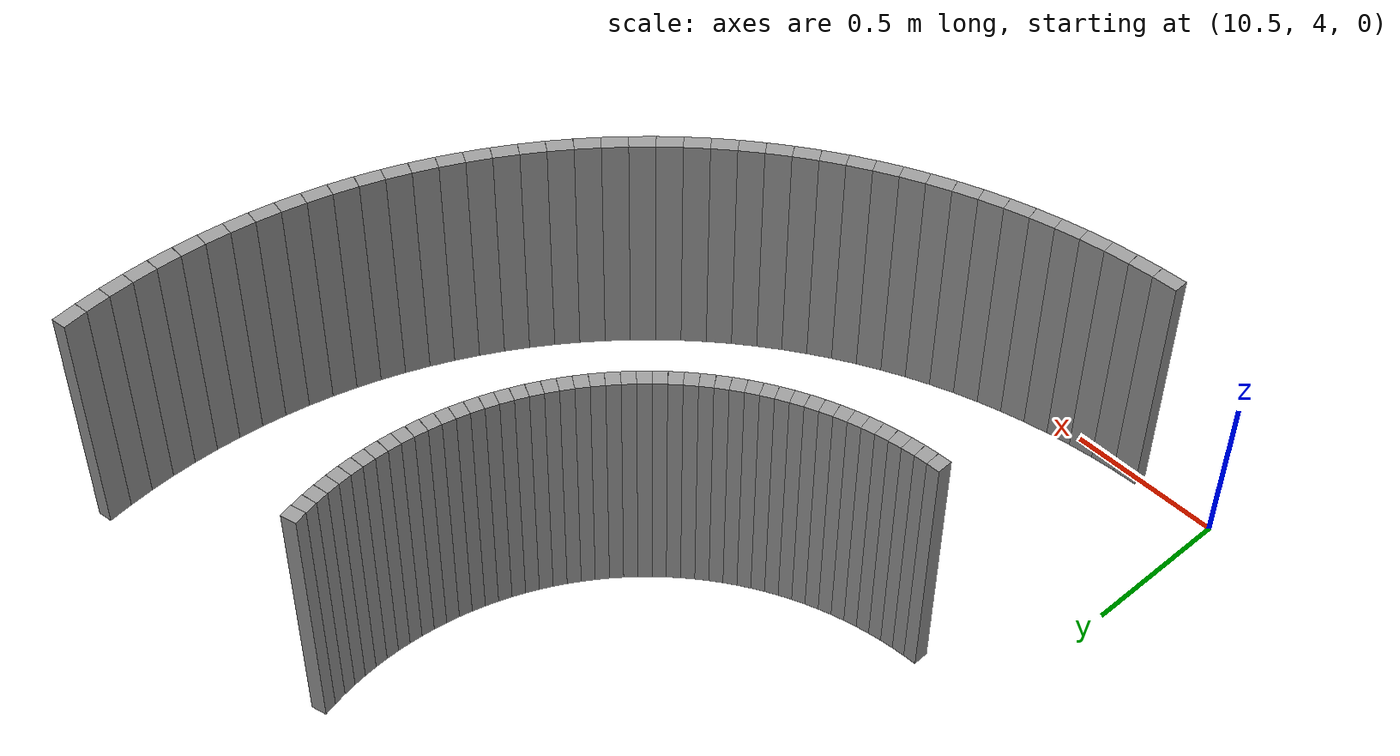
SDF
<sdf version="1.6">
 <model name="path_walls">
  <static>true</static>
  <model name="wall_left_59">
   <static>true</static>
   <pose>10.767954033458505 5.0013733407417655 0.40 0 0 0.03976699561502105</pose>
   <link name="wall_link">
    <visual name="wall_visual">
     <geometry><box><size>0.04273741812056066 0.05 0.8</size></box></geometry>
     <material><ambient>0.3 0.3 0.3 1</ambient><diffuse>0.6 0.6 0.6 1</diffuse></material>
    </visual>
    <collision name="wall_collision">
     <geometry><box><size>0.04273741812056066 0.05 0.8</size></box></geometry>
    </collision>
   </link>
  </model>
  <model name="wall_left_60">
   <static>true</static>
   <pose>10.81060700748904 5.0039206336489315 0.40 0 0 0.07953399123015173</pose>
   <link name="wall_link">
    <visual name="wall_visual">
     <geometry><box><size>0.04273741812055016 0.05 0.8</size></box></geometry>
     <material><ambient>0.3 0.3 0.3 1</ambient><diffuse>0.6 0.6 0.6 1</diffuse></material>
    </visual>
    <collision name="wall_collision">
     <geometry><box><size>0.04273741812055016 0.05 0.8</size></box></geometry>
    </collision>
   </link>
  </model>
  <model name="wall_left_61">
   <static>true</static>
   <pose>10.853124988471123 5.008161646265236 0.40 0 0 0.11930098684517748</pose>
   <link name="wall_link">
    <visual name="wall_visual">
     <geometry><box><size>0.04273741812055886 0.05 0.8</size></box></geometry>
     <material><ambient>0.3 0.3 0.3 1</ambient><diffuse>0.6 0.6 0.6 1</diffuse></material>
    </visual>
    <collision name="wall_collision">
     <geometry><box><size>0.04273741812055886 0.05 0.8</size></box></geometry>
    </collision>
   </link>
  </model>
  <model name="wall_left_62">
   <static>true</static>
   <pose>10.895440746737448 5.014089672678012 0.40 0 0 0.15906798246025736</pose>
   <link name="wall_link">
    <visual name="wall_visual">
     <geometry><box><size>0.0427374181205573 0.05 0.8</size></box></geometry>
     <material><ambient>0.3 0.3 0.3 1</ambient><diffuse>0.6 0.6 0.6 1</diffuse></material>
    </visual>
    <collision name="wall_collision">
     <geometry><box><size>0.0427374181205573 0.05 0.8</size></box></geometry>
    </collision>
   </link>
  </model>
  <model name="wall_left_63">
   <static>true</static>
   <pose>10.937487372376385 5.021695339459023 0.40 0 0 0.1988349780752911</pose>
   <link name="wall_link">
    <visual name="wall_visual">
     <geometry><box><size>0.04273741812055921 0.05 0.8</size></box></geometry>
     <material><ambient>0.3 0.3 0.3 1</ambient><diffuse>0.6 0.6 0.6 1</diffuse></material>
    </visual>
    <collision name="wall_collision">
     <geometry><box><size>0.04273741812055921 0.05 0.8</size></box></geometry>
    </collision>
   </link>
  </model>
  <model name="wall_left_64">
   <static>true</static>
   <pose>10.979198381030304 5.030966620485776 0.40 0 0 0.23860197369034425</pose>
   <link name="wall_link">
    <visual name="wall_visual">
     <geometry><box><size>0.04273741812055015 0.05 0.8</size></box></geometry>
     <material><ambient>0.3 0.3 0.3 1</ambient><diffuse>0.6 0.6 0.6 1</diffuse></material>
    </visual>
    <collision name="wall_collision">
     <geometry><box><size>0.04273741812055015 0.05 0.8</size></box></geometry>
    </collision>
   </link>
  </model>
  <model name="wall_left_65">
   <static>true</static>
   <pose>11.020507819021024 5.041888855957301 0.40 0 0 0.27836896930541855</pose>
   <link name="wall_link">
    <visual name="wall_visual">
     <geometry><box><size>0.04273741812056051 0.05 0.8</size></box></geometry>
     <material><ambient>0.3 0.3 0.3 1</ambient><diffuse>0.6 0.6 0.6 1</diffuse></material>
    </visual>
    <collision name="wall_collision">
     <geometry><box><size>0.04273741812056051 0.05 0.8</size></box></geometry>
    </collision>
   </link>
  </model>
  <model name="wall_left_66">
   <static>true</static>
   <pose>11.061350367636113 5.054444775574303 0.40 0 0 0.31813596492052176</pose>
   <link name="wall_link">
    <visual name="wall_visual">
     <geometry><box><size>0.042737418120553664 0.05 0.8</size></box></geometry>
     <material><ambient>0.3 0.3 0.3 1</ambient><diffuse>0.6 0.6 0.6 1</diffuse></material>
    </visual>
    <collision name="wall_collision">
     <geometry><box><size>0.042737418120553664 0.05 0.8</size></box></geometry>
    </collision>
   </link>
  </model>
  <model name="wall_left_67">
   <static>true</static>
   <pose>11.10166144641121 5.068614525847053 0.40 0 0 0.35790296053555865</pose>
   <link name="wall_link">
    <visual name="wall_visual">
     <geometry><box><size>0.042737418120550326 0.05 0.8</size></box></geometry>
     <material><ambient>0.3 0.3 0.3 1</ambient><diffuse>0.6 0.6 0.6 1</diffuse></material>
    </visual>
    <collision name="wall_collision">
     <geometry><box><size>0.042737418120550326 0.05 0.8</size></box></geometry>
    </collision>
   </link>
  </model>
  <model name="wall_left_68">
   <static>true</static>
   <pose>11.141377315245027 5.084375701487847 0.40 0 0 0.3976699561505768</pose>
   <link name="wall_link">
    <visual name="wall_visual">
     <geometry><box><size>0.04273741812057244 0.05 0.8</size></box></geometry>
     <material><ambient>0.3 0.3 0.3 1</ambient><diffuse>0.6 0.6 0.6 1</diffuse></material>
    </visual>
    <collision name="wall_collision">
     <geometry><box><size>0.04273741812057244 0.05 0.8</size></box></geometry>
    </collision>
   </link>
  </model>
  <model name="wall_left_69">
   <static>true</static>
   <pose>11.180435175185512 5.101703380838355 0.40 0 0 0.43743695176564795</pose>
   <link name="wall_link">
    <visual name="wall_visual">
     <geometry><box><size>0.042737418120538315 0.05 0.8</size></box></geometry>
     <material><ambient>0.3 0.3 0.3 1</ambient><diffuse>0.6 0.6 0.6 1</diffuse></material>
    </visual>
    <collision name="wall_collision">
     <geometry><box><size>0.042737418120538315 0.05 0.8</size></box></geometry>
    </collision>
   </link>
  </model>
  <model name="wall_left_70">
   <static>true</static>
   <pose>11.218773267727933 5.120570165275901 0.40 0 0 0.4772039473807626</pose>
   <link name="wall_link">
    <visual name="wall_visual">
     <geometry><box><size>0.04273741812056764 0.05 0.8</size></box></geometry>
     <material><ambient>0.3 0.3 0.3 1</ambient><diffuse>0.6 0.6 0.6 1</diffuse></material>
    </visual>
    <collision name="wall_collision">
     <geometry><box><size>0.04273741812056764 0.05 0.8</size></box></geometry>
    </collision>
   </link>
  </model>
  <model name="wall_left_71">
   <static>true</static>
   <pose>11.256330972467776 5.1409462225363125 0.40 0 0 0.5169709429957956</pose>
   <link name="wall_link">
    <visual name="wall_visual">
     <geometry><box><size>0.04273741812055135 0.05 0.8</size></box></geometry>
     <material><ambient>0.3 0.3 0.3 1</ambient><diffuse>0.6 0.6 0.6 1</diffuse></material>
    </visual>
    <collision name="wall_collision">
     <geometry><box><size>0.04273741812055135 0.05 0.8</size></box></geometry>
    </collision>
   </link>
  </model>
  <model name="wall_left_72">
   <static>true</static>
   <pose>11.293048902954023 5.16279933388485 0.40 0 0 0.5567379386108451</pose>
   <link name="wall_link">
    <visual name="wall_visual">
     <geometry><box><size>0.04273741812055879 0.05 0.8</size></box></geometry>
     <material><ambient>0.3 0.3 0.3 1</ambient><diffuse>0.6 0.6 0.6 1</diffuse></material>
    </visual>
    <collision name="wall_collision">
     <geometry><box><size>0.04273741812055879 0.05 0.8</size></box></geometry>
    </collision>
   </link>
  </model>
  <model name="wall_left_73">
   <static>true</static>
   <pose>11.328869000591379 5.186094945060669 0.40 0 0 0.5965049342258953</pose>
   <link name="wall_link">
    <visual name="wall_visual">
     <geometry><box><size>0.04273741812055266 0.05 0.8</size></box></geometry>
     <material><ambient>0.3 0.3 0.3 1</ambient><diffuse>0.6 0.6 0.6 1</diffuse></material>
    </visual>
    <collision name="wall_collision">
     <geometry><box><size>0.04273741812055266 0.05 0.8</size></box></geometry>
    </collision>
   </link>
  </model>
  <model name="wall_left_74">
   <static>true</static>
   <pose>11.363734626442824 5.210796220914195 0.40 0 0 0.6362719298409574</pose>
   <link name="wall_link">
    <visual name="wall_visual">
     <geometry><box><size>0.042737418120570594 0.05 0.8</size></box></geometry>
     <material><ambient>0.3 0.3 0.3 1</ambient><diffuse>0.6 0.6 0.6 1</diffuse></material>
    </visual>
    <collision name="wall_collision">
     <geometry><box><size>0.042737418120570594 0.05 0.8</size></box></geometry>
    </collision>
   </link>
  </model>
  <model name="wall_left_75">
   <static>true</static>
   <pose>11.397590650787407 5.2368641036510635 0.40 0 0 0.6760389254560351</pose>
   <link name="wall_link">
    <visual name="wall_visual">
     <geometry><box><size>0.04273741812053488 0.05 0.8</size></box></geometry>
     <material><ambient>0.3 0.3 0.3 1</ambient><diffuse>0.6 0.6 0.6 1</diffuse></material>
    </visual>
    <collision name="wall_collision">
     <geometry><box><size>0.04273741812053488 0.05 0.8</size></box></geometry>
    </collision>
   </link>
  </model>
  <model name="wall_left_76">
   <static>true</static>
   <pose>11.4303835402917 5.264257374590542 0.40 0 0 0.715805921071116</pose>
   <link name="wall_link">
    <visual name="wall_visual">
     <geometry><box><size>0.042737418120574466 0.05 0.8</size></box></geometry>
     <material><ambient>0.3 0.3 0.3 1</ambient><diffuse>0.6 0.6 0.6 1</diffuse></material>
    </visual>
    <collision name="wall_collision">
     <geometry><box><size>0.042737418120574466 0.05 0.8</size></box></geometry>
    </collision>
   </link>
  </model>
  <model name="wall_left_77">
   <static>true</static>
   <pose>11.462061442656967 5.292932719340714 0.40 0 0 0.7555729166861498</pose>
   <link name="wall_link">
    <visual name="wall_visual">
     <geometry><box><size>0.04273741812054185 0.05 0.8</size></box></geometry>
     <material><ambient>0.3 0.3 0.3 1</ambient><diffuse>0.6 0.6 0.6 1</diffuse></material>
    </visual>
    <collision name="wall_collision">
     <geometry><box><size>0.04273741812054185 0.05 0.8</size></box></geometry>
    </collision>
   </link>
  </model>
  <model name="wall_left_78">
   <static>true</static>
   <pose>11.492574268608323 5.322844796287438 0.40 0 0 0.7953399123011928</pose>
   <link name="wall_link">
    <visual name="wall_visual">
     <geometry><box><size>0.04273741812056665 0.05 0.8</size></box></geometry>
     <material><ambient>0.3 0.3 0.3 1</ambient><diffuse>0.6 0.6 0.6 1</diffuse></material>
    </visual>
    <collision name="wall_collision">
     <geometry><box><size>0.04273741812056665 0.05 0.8</size></box></geometry>
    </collision>
   </link>
  </model>
  <model name="wall_left_79">
   <static>true</static>
   <pose>11.521873771096168 5.35394630828878 0.40 0 0 0.8351069079162822</pose>
   <link name="wall_link">
    <visual name="wall_visual">
     <geometry><box><size>0.042737418120554795 0.05 0.8</size></box></geometry>
     <material><ambient>0.3 0.3 0.3 1</ambient><diffuse>0.6 0.6 0.6 1</diffuse></material>
    </visual>
    <collision name="wall_collision">
     <geometry><box><size>0.042737418120554795 0.05 0.8</size></box></geometry>
    </collision>
   </link>
  </model>
  <model name="wall_left_80">
   <static>true</static>
   <pose>11.549913621584679 5.386188077461481 0.40 0 0 0.8748739035313413</pose>
   <link name="wall_link">
    <visual name="wall_visual">
     <geometry><box><size>0.04273741812054139 0.05 0.8</size></box></geometry>
     <material><ambient>0.3 0.3 0.3 1</ambient><diffuse>0.6 0.6 0.6 1</diffuse></material>
    </visual>
    <collision name="wall_collision">
     <geometry><box><size>0.04273741812054139 0.05 0.8</size></box></geometry>
    </collision>
   </link>
  </model>
  <model name="wall_left_81">
   <static>true</static>
   <pose>11.57664948330679 5.419519122941347 0.40 0 0 0.9146408991463714</pose>
   <link name="wall_link">
    <visual name="wall_visual">
     <geometry><box><size>0.04273741812057686 0.05 0.8</size></box></geometry>
     <material><ambient>0.3 0.3 0.3 1</ambient><diffuse>0.6 0.6 0.6 1</diffuse></material>
    </visual>
    <collision name="wall_collision">
     <geometry><box><size>0.04273741812057686 0.05 0.8</size></box></geometry>
    </collision>
   </link>
  </model>
  <model name="wall_left_82">
   <static>true</static>
   <pose>11.602039081369677 5.453886741494425 0.40 0 0 0.9544078947614645</pose>
   <link name="wall_link">
    <visual name="wall_visual">
     <geometry><box><size>0.0427374181205414 0.05 0.8</size></box></geometry>
     <material><ambient>0.3 0.3 0.3 1</ambient><diffuse>0.6 0.6 0.6 1</diffuse></material>
    </visual>
    <collision name="wall_collision">
     <geometry><box><size>0.0427374181205414 0.05 0.8</size></box></geometry>
    </collision>
   </link>
  </model>
  <model name="wall_left_83">
   <static>true</static>
   <pose>11.626042269600081 5.48923659085167 0.40 0 0 0.994174890376542</pose>
   <link name="wall_link">
    <visual name="wall_visual">
     <geometry><box><size>0.042737418120561206 0.05 0.8</size></box></geometry>
     <material><ambient>0.3 0.3 0.3 1</ambient><diffuse>0.6 0.6 0.6 1</diffuse></material>
    </visual>
    <collision name="wall_collision">
     <geometry><box><size>0.042737418120561206 0.05 0.8</size></box></geometry>
    </collision>
   </link>
  </model>
  <model name="wall_left_84">
   <static>true</static>
   <pose>11.648621094023675 5.525512775635258 0.40 0 0 1.033941885991579</pose>
   <link name="wall_link">
    <visual name="wall_visual">
     <geometry><box><size>0.04273741812055267 0.05 0.8</size></box></geometry>
     <material><ambient>0.3 0.3 0.3 1</ambient><diffuse>0.6 0.6 0.6 1</diffuse></material>
    </visual>
    <collision name="wall_collision">
     <geometry><box><size>0.04273741812055267 0.05 0.8</size></box></geometry>
    </collision>
   </link>
  </model>
  <model name="wall_left_85">
   <static>true</static>
   <pose>11.669739852878067 5.562657935740641 0.40 0 0 1.0737088816066331</pose>
   <link name="wall_link">
    <visual name="wall_visual">
     <geometry><box><size>0.04273741812055853 0.05 0.8</size></box></geometry>
     <material><ambient>0.3 0.3 0.3 1</ambient><diffuse>0.6 0.6 0.6 1</diffuse></material>
    </visual>
    <collision name="wall_collision">
     <geometry><box><size>0.04273741812055853 0.05 0.8</size></box></geometry>
    </collision>
   </link>
  </model>
  <model name="wall_left_86">
   <static>true</static>
   <pose>11.689365153064648 5.60061333703468 0.40 0 0 1.113475877221707</pose>
   <link name="wall_link">
    <visual name="wall_visual">
     <geometry><box><size>0.04273741812056335 0.05 0.8</size></box></geometry>
     <material><ambient>0.3 0.3 0.3 1</ambient><diffuse>0.6 0.6 0.6 1</diffuse></material>
    </visual>
    <collision name="wall_collision">
     <geometry><box><size>0.04273741812056335 0.05 0.8</size></box></geometry>
    </collision>
   </link>
  </model>
  <model name="wall_left_87">
   <static>true</static>
   <pose>11.707465962949927 5.63931896422636 0.40 0 0 1.1532428728367714</pose>
   <link name="wall_link">
    <visual name="wall_visual">
     <geometry><box><size>0.042737418120545996 0.05 0.8</size></box></geometry>
     <material><ambient>0.3 0.3 0.3 1</ambient><diffuse>0.6 0.6 0.6 1</diffuse></material>
    </visual>
    <collision name="wall_collision">
     <geometry><box><size>0.042737418120545996 0.05 0.8</size></box></geometry>
    </collision>
   </link>
  </model>
  <model name="wall_left_88">
   <static>true</static>
   <pose>11.724013661432942 5.678713615763337 0.40 0 0 1.1930098684517914</pose>
   <link name="wall_link">
    <visual name="wall_visual">
     <geometry><box><size>0.04273741812056993 0.05 0.8</size></box></geometry>
     <material><ambient>0.3 0.3 0.3 1</ambient><diffuse>0.6 0.6 0.6 1</diffuse></material>
    </visual>
    <collision name="wall_collision">
     <geometry><box><size>0.04273741812056993 0.05 0.8</size></box></geometry>
    </collision>
   </link>
  </model>
  <model name="wall_left_89">
   <static>true</static>
   <pose>11.738982083201089 5.7187350006041395 0.40 0 0 1.2327768640668635</pose>
   <link name="wall_link">
    <visual name="wall_visual">
     <geometry><box><size>0.0427374181205469 0.05 0.8</size></box></geometry>
     <material><ambient>0.3 0.3 0.3 1</ambient><diffuse>0.6 0.6 0.6 1</diffuse></material>
    </visual>
    <collision name="wall_collision">
     <geometry><box><size>0.0427374181205469 0.05 0.8</size></box></geometry>
    </collision>
   </link>
  </model>
  <model name="wall_left_90">
   <static>true</static>
   <pose>11.752347560102857 5.759319836713121 0.40 0 0 1.2725438596819625</pose>
   <link name="wall_link">
    <visual name="wall_visual">
     <geometry><box><size>0.04273741812056556 0.05 0.8</size></box></geometry>
     <material><ambient>0.3 0.3 0.3 1</ambient><diffuse>0.6 0.6 0.6 1</diffuse></material>
    </visual>
    <collision name="wall_collision">
     <geometry><box><size>0.04273741812056556 0.05 0.8</size></box></geometry>
    </collision>
   </link>
  </model>
  <model name="wall_left_91">
   <static>true</static>
   <pose>11.764088958572055 5.800403951122363 0.40 0 0 1.3123108552969769</pose>
   <link name="wall_link">
    <visual name="wall_visual">
     <geometry><box><size>0.042737418120539855 0.05 0.8</size></box></geometry>
     <material><ambient>0.3 0.3 0.3 1</ambient><diffuse>0.6 0.6 0.6 1</diffuse></material>
    </visual>
    <collision name="wall_collision">
     <geometry><box><size>0.042737418120539855 0.05 0.8</size></box></geometry>
    </collision>
   </link>
  </model>
  <model name="wall_left_92">
   <static>true</static>
   <pose>11.774187713044311 5.841922381402337 0.40 0 0 1.3520778509120963</pose>
   <link name="wall_link">
    <visual name="wall_visual">
     <geometry><box><size>0.042737418120558784 0.05 0.8</size></box></geometry>
     <material><ambient>0.3 0.3 0.3 1</ambient><diffuse>0.6 0.6 0.6 1</diffuse></material>
    </visual>
    <collision name="wall_collision">
     <geometry><box><size>0.042737418120558784 0.05 0.8</size></box></geometry>
    </collision>
   </link>
  </model>
  <model name="wall_left_93">
   <static>true</static>
   <pose>11.78262785531306 5.883809478380865 0.40 0 0 1.3918448465270767</pose>
   <link name="wall_link">
    <visual name="wall_visual">
     <geometry><box><size>0.042737418120573425 0.05 0.8</size></box></geometry>
     <material><ambient>0.3 0.3 0.3 1</ambient><diffuse>0.6 0.6 0.6 1</diffuse></material>
    </visual>
    <collision name="wall_collision">
     <geometry><box><size>0.042737418120573425 0.05 0.8</size></box></geometry>
    </collision>
   </link>
  </model>
  <model name="wall_left_94">
   <static>true</static>
   <pose>11.78939603977853 5.925999009947896 0.40 0 0 1.431611842142229</pose>
   <link name="wall_link">
    <visual name="wall_visual">
     <geometry><box><size>0.042737418120529676 0.05 0.8</size></box></geometry>
     <material><ambient>0.3 0.3 0.3 1</ambient><diffuse>0.6 0.6 0.6 1</diffuse></material>
    </visual>
    <collision name="wall_collision">
     <geometry><box><size>0.042737418120529676 0.05 0.8</size></box></geometry>
    </collision>
   </link>
  </model>
  <model name="wall_left_95">
   <static>true</static>
   <pose>11.794481564549919 5.968424265782173 0.40 0 0 1.4713788377573287</pose>
   <link name="wall_link">
    <visual name="wall_visual">
     <geometry><box><size>0.04273741812057654 0.05 0.8</size></box></geometry>
     <material><ambient>0.3 0.3 0.3 1</ambient><diffuse>0.6 0.6 0.6 1</diffuse></material>
    </visual>
    <collision name="wall_collision">
     <geometry><box><size>0.04273741812057654 0.05 0.8</size></box></geometry>
    </collision>
   </link>
  </model>
  <model name="wall_left_96">
   <static>true</static>
   <pose>11.79787638836726 6.011018162833919 0.40 0 0 1.511145833372141</pose>
   <link name="wall_link">
    <visual name="wall_visual">
     <geometry><box><size>0.04273741812055825 0.05 0.8</size></box></geometry>
     <material><ambient>0.3 0.3 0.3 1</ambient><diffuse>0.6 0.6 0.6 1</diffuse></material>
    </visual>
    <collision name="wall_collision">
     <geometry><box><size>0.04273741812055825 0.05 0.8</size></box></geometry>
    </collision>
   </link>
  </model>
  <model name="wall_left_97">
   <static>true</static>
   <pose>11.799575143316305 6.053713351396886 0.40 0 0 1.5509128289874299</pose>
   <link name="wall_link">
    <visual name="wall_visual">
     <geometry><box><size>0.04273741812054841 0.05 0.8</size></box></geometry>
     <material><ambient>0.3 0.3 0.3 1</ambient><diffuse>0.6 0.6 0.6 1</diffuse></material>
    </visual>
    <collision name="wall_collision">
     <geometry><box><size>0.04273741812054841 0.05 0.8</size></box></geometry>
    </collision>
   </link>
  </model>
  <model name="wall_left_98">
   <static>true</static>
   <pose>11.799575143316304 6.096442321602175 0.40 0 0 1.590679824602398</pose>
   <link name="wall_link">
    <visual name="wall_visual">
     <geometry><box><size>0.04273741812056265 0.05 0.8</size></box></geometry>
     <material><ambient>0.3 0.3 0.3 1</ambient><diffuse>0.6 0.6 0.6 1</diffuse></material>
    </visual>
    <collision name="wall_collision">
     <geometry><box><size>0.04273741812056265 0.05 0.8</size></box></geometry>
    </collision>
   </link>
  </model>
  <model name="wall_left_99">
   <static>true</static>
   <pose>11.797876388367264 6.139137510165136 0.40 0 0 1.630446820217483</pose>
   <link name="wall_link">
    <visual name="wall_visual">
     <geometry><box><size>0.04273741812053023 0.05 0.8</size></box></geometry>
     <material><ambient>0.3 0.3 0.3 1</ambient><diffuse>0.6 0.6 0.6 1</diffuse></material>
    </visual>
    <collision name="wall_collision">
     <geometry><box><size>0.04273741812053023 0.05 0.8</size></box></geometry>
    </collision>
   </link>
  </model>
  <model name="wall_left_100">
   <static>true</static>
   <pose>11.794481564549923 6.1817314072168745 0.40 0 0 1.670213815832595</pose>
   <link name="wall_link">
    <visual name="wall_visual">
     <geometry><box><size>0.04273741812059227 0.05 0.8</size></box></geometry>
     <material><ambient>0.3 0.3 0.3 1</ambient><diffuse>0.6 0.6 0.6 1</diffuse></material>
    </visual>
    <collision name="wall_collision">
     <geometry><box><size>0.04273741812059227 0.05 0.8</size></box></geometry>
    </collision>
   </link>
  </model>
  <model name="wall_left_101">
   <static>true</static>
   <pose>11.78939603977853 6.224156663051158 0.40 0 0 1.7099808114475727</pose>
   <link name="wall_link">
    <visual name="wall_visual">
     <geometry><box><size>0.04273741812052703 0.05 0.8</size></box></geometry>
     <material><ambient>0.3 0.3 0.3 1</ambient><diffuse>0.6 0.6 0.6 1</diffuse></material>
    </visual>
    <collision name="wall_collision">
     <geometry><box><size>0.04273741812052703 0.05 0.8</size></box></geometry>
    </collision>
   </link>
  </model>
  <model name="wall_left_102">
   <static>true</static>
   <pose>11.78262785531306 6.266346194618188 0.40 0 0 1.7497478070627128</pose>
   <link name="wall_link">
    <visual name="wall_visual">
     <geometry><box><size>0.04273741812057431 0.05 0.8</size></box></geometry>
     <material><ambient>0.3 0.3 0.3 1</ambient><diffuse>0.6 0.6 0.6 1</diffuse></material>
    </visual>
    <collision name="wall_collision">
     <geometry><box><size>0.04273741812057431 0.05 0.8</size></box></geometry>
    </collision>
   </link>
  </model>
  <model name="wall_left_103">
   <static>true</static>
   <pose>11.774187713044311 6.308233291596717 0.40 0 0 1.789514802677697</pose>
   <link name="wall_link">
    <visual name="wall_visual">
     <geometry><box><size>0.042737418120558784 0.05 0.8</size></box></geometry>
     <material><ambient>0.3 0.3 0.3 1</ambient><diffuse>0.6 0.6 0.6 1</diffuse></material>
    </visual>
    <collision name="wall_collision">
     <geometry><box><size>0.042737418120558784 0.05 0.8</size></box></geometry>
    </collision>
   </link>
  </model>
  <model name="wall_left_104">
   <static>true</static>
   <pose>11.764088958572055 6.34975172187669 0.40 0 0 1.8292817982928162</pose>
   <link name="wall_link">
    <visual name="wall_visual">
     <geometry><box><size>0.042737418120539855 0.05 0.8</size></box></geometry>
     <material><ambient>0.3 0.3 0.3 1</ambient><diffuse>0.6 0.6 0.6 1</diffuse></material>
    </visual>
    <collision name="wall_collision">
     <geometry><box><size>0.042737418120539855 0.05 0.8</size></box></geometry>
    </collision>
   </link>
  </model>
  <model name="wall_right_59">
   <static>true</static>
   <pose>10.80770268987595 4.002361457465766 0.40 0 0 0.03976699561505771</pose>
   <link name="wall_link">
    <visual name="wall_visual">
     <geometry><box><size>0.08250179345069615 0.05 0.8</size></box></geometry>
     <material><ambient>0.3 0.3 0.3 1</ambient><diffuse>0.6 0.6 0.6 1</diffuse></material>
    </visual>
    <collision name="wall_collision">
     <geometry><box><size>0.08250179345069615 0.05 0.8</size></box></geometry>
    </collision>
   </link>
  </model>
  <model name="wall_right_60">
   <static>true</static>
   <pose>10.890041469527983 4.007278839996751 0.40 0 0 0.079533991230121</pose>
   <link name="wall_link">
    <visual name="wall_visual">
     <geometry><box><size>0.08250179345070152 0.05 0.8</size></box></geometry>
     <material><ambient>0.3 0.3 0.3 1</ambient><diffuse>0.6 0.6 0.6 1</diffuse></material>
    </visual>
    <collision name="wall_collision">
     <geometry><box><size>0.08250179345070152 0.05 0.8</size></box></geometry>
    </collision>
   </link>
  </model>
  <model name="wall_right_61">
   <static>true</static>
   <pose>10.972119653919691 4.0154658377677706 0.40 0 0 0.11930098684517998</pose>
   <link name="wall_link">
    <visual name="wall_visual">
     <geometry><box><size>0.08250179345069318 0.05 0.8</size></box></geometry>
     <material><ambient>0.3 0.3 0.3 1</ambient><diffuse>0.6 0.6 0.6 1</diffuse></material>
    </visual>
    <collision name="wall_collision">
     <geometry><box><size>0.08250179345069318 0.05 0.8</size></box></geometry>
    </collision>
   </link>
  </model>
  <model name="wall_right_62">
   <static>true</static>
   <pose>11.053807460570756 4.02690950545255 0.40 0 0 0.15906798246025028</pose>
   <link name="wall_link">
    <visual name="wall_visual">
     <geometry><box><size>0.08250179345069124 0.05 0.8</size></box></geometry>
     <material><ambient>0.3 0.3 0.3 1</ambient><diffuse>0.6 0.6 0.6 1</diffuse></material>
    </visual>
    <collision name="wall_collision">
     <geometry><box><size>0.08250179345069124 0.05 0.8</size></box></geometry>
    </collision>
   </link>
  </model>
  <model name="wall_right_63">
   <static>true</static>
   <pose>11.134975724268314 4.041591748260285 0.40 0 0 0.19883497807529238</pose>
   <link name="wall_link">
    <visual name="wall_visual">
     <geometry><box><size>0.08250179345069751 0.05 0.8</size></box></geometry>
     <material><ambient>0.3 0.3 0.3 1</ambient><diffuse>0.6 0.6 0.6 1</diffuse></material>
    </visual>
    <collision name="wall_collision">
     <geometry><box><size>0.08250179345069751 0.05 0.8</size></box></geometry>
    </collision>
   </link>
  </model>
  <model name="wall_right_64">
   <static>true</static>
   <pose>11.2154961013037 4.059489350547231 0.40 0 0 0.23860197369036631</pose>
   <link name="wall_link">
    <visual name="wall_visual">
     <geometry><box><size>0.08250179345070115 0.05 0.8</size></box></geometry>
     <material><ambient>0.3 0.3 0.3 1</ambient><diffuse>0.6 0.6 0.6 1</diffuse></material>
    </visual>
    <collision name="wall_collision">
     <geometry><box><size>0.08250179345070115 0.05 0.8</size></box></geometry>
    </collision>
   </link>
  </model>
  <model name="wall_right_65">
   <static>true</static>
   <pose>11.295241272410223 4.080574012525402 0.40 0 0 0.2783689693054232</pose>
   <link name="wall_link">
    <visual name="wall_visual">
     <geometry><box><size>0.08250179345069632 0.05 0.8</size></box></geometry>
     <material><ambient>0.3 0.3 0.3 1</ambient><diffuse>0.6 0.6 0.6 1</diffuse></material>
    </visual>
    <collision name="wall_collision">
     <geometry><box><size>0.08250179345069632 0.05 0.8</size></box></geometry>
    </collision>
   </link>
  </model>
  <model name="wall_right_66">
   <static>true</static>
   <pose>11.374085144081107 4.104812395010355 0.40 0 0 0.3181359649204967</pose>
   <link name="wall_link">
    <visual name="wall_visual">
     <geometry><box><size>0.08250179345069505 0.05 0.8</size></box></geometry>
     <material><ambient>0.3 0.3 0.3 1</ambient><diffuse>0.6 0.6 0.6 1</diffuse></material>
    </visual>
    <collision name="wall_collision">
     <geometry><box><size>0.08250179345069505 0.05 0.8</size></box></geometry>
    </collision>
   </link>
  </model>
  <model name="wall_right_67">
   <static>true</static>
   <pose>11.451903047949255 4.132166172137294 0.40 0 0 0.3579029605355494</pose>
   <link name="wall_link">
    <visual name="wall_visual">
     <geometry><box><size>0.08250179345070402 0.05 0.8</size></box></geometry>
     <material><ambient>0.3 0.3 0.3 1</ambient><diffuse>0.6 0.6 0.6 1</diffuse></material>
    </visual>
    <collision name="wall_collision">
     <geometry><box><size>0.08250179345070402 0.05 0.8</size></box></geometry>
    </collision>
   </link>
  </model>
  <model name="wall_right_68">
   <static>true</static>
   <pose>11.528571937913526 4.162592091962136 0.40 0 0 0.3976699561506086</pose>
   <link name="wall_link">
    <visual name="wall_visual">
     <geometry><box><size>0.0825017934506807 0.05 0.8</size></box></geometry>
     <material><ambient>0.3 0.3 0.3 1</ambient><diffuse>0.6 0.6 0.6 1</diffuse></material>
    </visual>
    <collision name="wall_collision">
     <geometry><box><size>0.0825017934506807 0.05 0.8</size></box></geometry>
    </collision>
   </link>
  </model>
  <model name="wall_right_69">
   <static>true</static>
   <pose>11.603970584699962 4.1960420448517315 0.40 0 0 0.43743695176565833</pose>
   <link name="wall_link">
    <visual name="wall_visual">
     <geometry><box><size>0.08250179345071389 0.05 0.8</size></box></geometry>
     <material><ambient>0.3 0.3 0.3 1</ambient><diffuse>0.6 0.6 0.6 1</diffuse></material>
    </visual>
    <collision name="wall_collision">
     <geometry><box><size>0.08250179345071389 0.05 0.8</size></box></geometry>
    </collision>
   </link>
  </model>
  <model name="wall_right_70">
   <static>true</static>
   <pose>11.677979767550148 4.2324631395550805 0.40 0 0 0.4772039473807301</pose>
   <link name="wall_link">
    <visual name="wall_visual">
     <geometry><box><size>0.08250179345068465 0.05 0.8</size></box></geometry>
     <material><ambient>0.3 0.3 0.3 1</ambient><diffuse>0.6 0.6 0.6 1</diffuse></material>
    </visual>
    <collision name="wall_collision">
     <geometry><box><size>0.08250179345068465 0.05 0.8</size></box></geometry>
    </collision>
   </link>
  </model>
  <model name="wall_right_71">
   <static>true</static>
   <pose>11.75048246273374 4.271797786835265 0.40 0 0 0.5169709429957923</pose>
   <link name="wall_link">
    <visual name="wall_visual">
     <geometry><box><size>0.08250179345070187 0.05 0.8</size></box></geometry>
     <material><ambient>0.3 0.3 0.3 1</ambient><diffuse>0.6 0.6 0.6 1</diffuse></material>
    </visual>
    <collision name="wall_collision">
     <geometry><box><size>0.08250179345070187 0.05 0.8</size></box></geometry>
    </collision>
   </link>
  </model>
  <model name="wall_right_72">
   <static>true</static>
   <pose>11.82136402858707 4.313983790529882 0.40 0 0 0.5567379386108438</pose>
   <link name="wall_link">
    <visual name="wall_visual">
     <geometry><box><size>0.08250179345069344 0.05 0.8</size></box></geometry>
     <material><ambient>0.3 0.3 0.3 1</ambient><diffuse>0.6 0.6 0.6 1</diffuse></material>
    </visual>
    <collision name="wall_collision">
     <geometry><box><size>0.08250179345069344 0.05 0.8</size></box></geometry>
    </collision>
   </link>
  </model>
  <model name="wall_right_73">
   <static>true</static>
   <pose>11.890512386785137 4.35895444589595 0.40 0 0 0.596504934225929</pose>
   <link name="wall_link">
    <visual name="wall_visual">
     <geometry><box><size>0.08250179345070106 0.05 0.8</size></box></geometry>
     <material><ambient>0.3 0.3 0.3 1</ambient><diffuse>0.6 0.6 0.6 1</diffuse></material>
    </visual>
    <collision name="wall_collision">
     <geometry><box><size>0.08250179345070106 0.05 0.8</size></box></geometry>
    </collision>
   </link>
  </model>
  <model name="wall_right_74">
   <static>true</static>
   <pose>11.957818199560503 4.406638645083823 0.40 0 0 0.6362719298409416</pose>
   <link name="wall_link">
    <visual name="wall_visual">
     <geometry><box><size>0.08250179345068452 0.05 0.8</size></box></geometry>
     <material><ambient>0.3 0.3 0.3 1</ambient><diffuse>0.6 0.6 0.6 1</diffuse></material>
    </visual>
    <collision name="wall_collision">
     <geometry><box><size>0.08250179345068452 0.05 0.8</size></box></geometry>
    </collision>
   </link>
  </model>
  <model name="wall_right_75">
   <static>true</static>
   <pose>12.023175042588779 4.456960989573322 0.40 0 0 0.676038925456047</pose>
   <link name="wall_link">
    <visual name="wall_visual">
     <geometry><box><size>0.0825017934507149 0.05 0.8</size></box></geometry>
     <material><ambient>0.3 0.3 0.3 1</ambient><diffuse>0.6 0.6 0.6 1</diffuse></material>
    </visual>
    <collision name="wall_collision">
     <geometry><box><size>0.0825017934507149 0.05 0.8</size></box></geometry>
    </collision>
   </link>
  </model>
  <model name="wall_right_76">
   <static>true</static>
   <pose>12.08647957326733 4.509841909394279 0.40 0 0 0.7158059210710958</pose>
   <link name="wall_link">
    <visual name="wall_visual">
     <geometry><box><size>0.08250179345067735 0.05 0.8</size></box></geometry>
     <material><ambient>0.3 0.3 0.3 1</ambient><diffuse>0.6 0.6 0.6 1</diffuse></material>
    </visual>
    <collision name="wall_collision">
     <geometry><box><size>0.08250179345067735 0.05 0.8</size></box></geometry>
    </collision>
   </link>
  </model>
  <model name="wall_right_77">
   <static>true</static>
   <pose>12.147631694121198 4.565197788943028 0.40 0 0 0.755572916686143</pose>
   <link name="wall_link">
    <visual name="wall_visual">
     <geometry><box><size>0.08250179345071279 0.05 0.8</size></box></geometry>
     <material><ambient>0.3 0.3 0.3 1</ambient><diffuse>0.6 0.6 0.6 1</diffuse></material>
    </visual>
    <collision name="wall_collision">
     <geometry><box><size>0.08250179345071279 0.05 0.8</size></box></geometry>
    </collision>
   </link>
  </model>
  <model name="wall_right_78">
   <static>true</static>
   <pose>12.206534711077783 4.622941099195858 0.40 0 0 0.795339912301211</pose>
   <link name="wall_link">
    <visual name="wall_visual">
     <geometry><box><size>0.08250179345068724 0.05 0.8</size></box></geometry>
     <material><ambient>0.3 0.3 0.3 1</ambient><diffuse>0.6 0.6 0.6 1</diffuse></material>
    </visual>
    <collision name="wall_collision">
     <geometry><box><size>0.08250179345068724 0.05 0.8</size></box></geometry>
    </collision>
   </link>
  </model>
  <model name="wall_right_79">
   <static>true</static>
   <pose>12.263095486360026 4.682980536110382 0.40 0 0 0.8351069079162688</pose>
   <link name="wall_link">
    <visual name="wall_visual">
     <geometry><box><size>0.08250179345069707 0.05 0.8</size></box></geometry>
     <material><ambient>0.3 0.3 0.3 1</ambient><diffuse>0.6 0.6 0.6 1</diffuse></material>
    </visual>
    <collision name="wall_collision">
     <geometry><box><size>0.08250179345069707 0.05 0.8</size></box></geometry>
    </collision>
   </link>
  </model>
  <model name="wall_right_80">
   <static>true</static>
   <pose>12.317224585756406 4.745221164996019 0.40 0 0 0.8748739035313375</pose>
   <link name="wall_link">
    <visual name="wall_visual">
     <geometry><box><size>0.0825017934507106 0.05 0.8</size></box></geometry>
     <material><ambient>0.3 0.3 0.3 1</ambient><diffuse>0.6 0.6 0.6 1</diffuse></material>
    </visual>
    <collision name="wall_collision">
     <geometry><box><size>0.0825017934507106 0.05 0.8</size></box></geometry>
    </collision>
   </link>
  </model>
  <model name="wall_right_81">
   <static>true</static>
   <pose>12.368836420034782 4.809564570625215 0.40 0 0 0.9146408991463786</pose>
   <link name="wall_link">
    <visual name="wall_visual">
     <geometry><box><size>0.0825017934506774 0.05 0.8</size></box></geometry>
     <material><ambient>0.3 0.3 0.3 1</ambient><diffuse>0.6 0.6 0.6 1</diffuse></material>
    </visual>
    <collision name="wall_collision">
     <geometry><box><size>0.0825017934506774 0.05 0.8</size></box></geometry>
    </collision>
   </link>
  </model>
  <model name="wall_right_82">
   <static>true</static>
   <pose>12.417849380276587 4.875909012848182 0.40 0 0 0.9544078947614711</pose>
   <link name="wall_link">
    <visual name="wall_visual">
     <geometry><box><size>0.08250179345071075 0.05 0.8</size></box></geometry>
     <material><ambient>0.3 0.3 0.3 1</ambient><diffuse>0.6 0.6 0.6 1</diffuse></material>
    </visual>
    <collision name="wall_collision">
     <geometry><box><size>0.08250179345071075 0.05 0.8</size></box></geometry>
    </collision>
   </link>
  </model>
  <model name="wall_right_83">
   <static>true</static>
   <pose>12.464185966917295 4.944149587464979 0.40 0 0 0.9941748903765498</pose>
   <link name="wall_link">
    <visual name="wall_visual">
     <geometry><box><size>0.08250179345068938 0.05 0.8</size></box></geometry>
     <material><ambient>0.3 0.3 0.3 1</ambient><diffuse>0.6 0.6 0.6 1</diffuse></material>
    </visual>
    <collision name="wall_collision">
     <geometry><box><size>0.08250179345068938 0.05 0.8</size></box></geometry>
    </collision>
   </link>
  </model>
  <model name="wall_right_84">
   <static>true</static>
   <pose>12.50777291228915 5.014178392100591 0.40 0 0 1.0339418859915657</pose>
   <link name="wall_link">
    <visual name="wall_visual">
     <geometry><box><size>0.08250179345070174 0.05 0.8</size></box></geometry>
     <material><ambient>0.3 0.3 0.3 1</ambient><diffuse>0.6 0.6 0.6 1</diffuse></material>
    </visual>
    <collision name="wall_collision">
     <geometry><box><size>0.08250179345070174 0.05 0.8</size></box></geometry>
    </collision>
   </link>
  </model>
  <model name="wall_right_85">
   <static>true</static>
   <pose>12.548541296472427 5.085884696820797 0.40 0 0 1.0737088816066511</pose>
   <link name="wall_link">
    <visual name="wall_visual">
     <geometry><box><size>0.08250179345069389 0.05 0.8</size></box></geometry>
     <material><ambient>0.3 0.3 0.3 1</ambient><diffuse>0.6 0.6 0.6 1</diffuse></material>
    </visual>
    <collision name="wall_collision">
     <geometry><box><size>0.08250179345069389 0.05 0.8</size></box></geometry>
    </collision>
   </link>
  </model>
  <model name="wall_right_86">
   <static>true</static>
   <pose>12.586426656271973 5.159155119218925 0.40 0 0 1.1134758772217115</pose>
   <link name="wall_link">
    <visual name="wall_visual">
     <geometry><box><size>0.0825017934506886 0.05 0.8</size></box></geometry>
     <material><ambient>0.3 0.3 0.3 1</ambient><diffuse>0.6 0.6 0.6 1</diffuse></material>
    </visual>
    <collision name="wall_collision">
     <geometry><box><size>0.0825017934506886 0.05 0.8</size></box></geometry>
    </collision>
   </link>
  </model>
  <model name="wall_right_87">
   <static>true</static>
   <pose>12.62136908714679 5.233873803696776 0.40 0 0 1.1532428728367543</pose>
   <link name="wall_link">
    <visual name="wall_visual">
     <geometry><box><size>0.08250179345070684 0.05 0.8</size></box></geometry>
     <material><ambient>0.3 0.3 0.3 1</ambient><diffuse>0.6 0.6 0.6 1</diffuse></material>
    </visual>
    <collision name="wall_collision">
     <geometry><box><size>0.08250179345070684 0.05 0.8</size></box></geometry>
    </collision>
   </link>
  </model>
  <model name="wall_right_88">
   <static>true</static>
   <pose>12.653313337931408 5.309922604656101 0.40 0 0 1.193009868451791</pose>
   <link name="wall_link">
    <visual name="wall_visual">
     <geometry><box><size>0.08250179345068409 0.05 0.8</size></box></geometry>
     <material><ambient>0.3 0.3 0.3 1</ambient><diffuse>0.6 0.6 0.6 1</diffuse></material>
    </visual>
    <collision name="wall_collision">
     <geometry><box><size>0.08250179345068409 0.05 0.8</size></box></geometry>
    </collision>
   </link>
  </model>
  <model name="wall_right_89">
   <static>true</static>
   <pose>12.682208898199342 5.387181273311107 0.40 0 0 1.2327768640668784</pose>
   <link name="wall_link">
    <visual name="wall_visual">
     <geometry><box><size>0.08250179345070588 0.05 0.8</size></box></geometry>
     <material><ambient>0.3 0.3 0.3 1</ambient><diffuse>0.6 0.6 0.6 1</diffuse></material>
    </visual>
    <collision name="wall_collision">
     <geometry><box><size>0.08250179345070588 0.05 0.8</size></box></geometry>
    </collision>
   </link>
  </model>
  <model name="wall_right_90">
   <static>true</static>
   <pose>12.708010078130457 5.465527647826487 0.40 0 0 1.272543859681943</pose>
   <link name="wall_link">
    <visual name="wall_visual">
     <geometry><box><size>0.08250179345068691 0.05 0.8</size></box></geometry>
     <material><ambient>0.3 0.3 0.3 1</ambient><diffuse>0.6 0.6 0.6 1</diffuse></material>
    </visual>
    <collision name="wall_collision">
     <geometry><box><size>0.08250179345068691 0.05 0.8</size></box></geometry>
    </collision>
   </link>
  </model>
  <model name="wall_right_91">
   <static>true</static>
   <pose>12.73067608075597 5.544837846480397 0.40 0 0 1.3123108552969873</pose>
   <link name="wall_link">
    <visual name="wall_visual">
     <geometry><box><size>0.08250179345071162 0.05 0.8</size></box></geometry>
     <material><ambient>0.3 0.3 0.3 1</ambient><diffuse>0.6 0.6 0.6 1</diffuse></material>
    </visual>
    <collision name="wall_collision">
     <geometry><box><size>0.08250179345071162 0.05 0.8</size></box></geometry>
    </collision>
   </link>
  </model>
  <model name="wall_right_92">
   <static>true</static>
   <pose>12.750171066466837 5.62498646354692 0.40 0 0 1.352077850912088</pose>
   <link name="wall_link">
    <visual name="wall_visual">
     <geometry><box><size>0.08250179345069444 0.05 0.8</size></box></geometry>
     <material><ambient>0.3 0.3 0.3 1</ambient><diffuse>0.6 0.6 0.6 1</diffuse></material>
    </visual>
    <collision name="wall_collision">
     <geometry><box><size>0.08250179345069444 0.05 0.8</size></box></geometry>
    </collision>
   </link>
  </model>
  <model name="wall_right_93">
   <static>true</static>
   <pose>12.76646420968354 5.705846767588275 0.40 0 0 1.3918448465271192</pose>
   <link name="wall_link">
    <visual name="wall_visual">
     <geometry><box><size>0.0825017934506811 0.05 0.8</size></box></geometry>
     <material><ambient>0.3 0.3 0.3 1</ambient><diffuse>0.6 0.6 0.6 1</diffuse></material>
    </visual>
    <collision name="wall_collision">
     <geometry><box><size>0.0825017934506811 0.05 0.8</size></box></geometry>
    </collision>
   </link>
  </model>
  <model name="wall_right_94">
   <static>true</static>
   <pose>12.779529747597683 5.78729090184334 0.40 0 0 1.4316118421421873</pose>
   <link name="wall_link">
    <visual name="wall_visual">
     <geometry><box><size>0.08250179345072327 0.05 0.8</size></box></geometry>
     <material><ambient>0.3 0.3 0.3 1</ambient><diffuse>0.6 0.6 0.6 1</diffuse></material>
    </visual>
    <collision name="wall_collision">
     <geometry><box><size>0.08250179345072327 0.05 0.8</size></box></geometry>
    </collision>
   </link>
  </model>
  <model name="wall_right_95">
   <static>true</static>
   <pose>12.789347020908256 5.869190086395372 0.40 0 0 1.4713788377572787</pose>
   <link name="wall_link">
    <visual name="wall_visual">
     <geometry><box><size>0.08250179345067411 0.05 0.8</size></box></geometry>
     <material><ambient>0.3 0.3 0.3 1</ambient><diffuse>0.6 0.6 0.6 1</diffuse></material>
    </visual>
    <collision name="wall_collision">
     <geometry><box><size>0.08250179345067411 0.05 0.8</size></box></geometry>
    </collision>
   </link>
  </model>
  <model name="wall_right_96">
   <static>true</static>
   <pose>12.795900506488259 5.951414821799585 0.40 0 0 1.5111458333722405</pose>
   <link name="wall_link">
    <visual name="wall_visual">
     <geometry><box><size>0.08250179345069475 0.05 0.8</size></box></geometry>
     <material><ambient>0.3 0.3 0.3 1</ambient><diffuse>0.6 0.6 0.6 1</diffuse></material>
    </visual>
    <collision name="wall_collision">
     <geometry><box><size>0.08250179345069475 0.05 0.8</size></box></geometry>
    </collision>
   </link>
  </model>
  <model name="wall_right_97">
   <static>true</static>
   <pose>12.799179841929956 6.033835093848415 0.40 0 0 1.5509128289873855</pose>
   <link name="wall_link">
    <visual name="wall_visual">
     <geometry><box><size>0.08250179345070481 0.05 0.8</size></box></geometry>
     <material><ambient>0.3 0.3 0.3 1</ambient><diffuse>0.6 0.6 0.6 1</diffuse></material>
    </visual>
    <collision name="wall_collision">
     <geometry><box><size>0.08250179345070481 0.05 0.8</size></box></geometry>
    </collision>
   </link>
  </model>
  <model name="wall_right_98">
   <static>true</static>
   <pose>12.799179841929956 6.116320579150631 0.40 0 0 1.5906798246023897</pose>
   <link name="wall_link">
    <visual name="wall_visual">
     <geometry><box><size>0.08250179345069057 0.05 0.8</size></box></geometry>
     <material><ambient>0.3 0.3 0.3 1</ambient><diffuse>0.6 0.6 0.6 1</diffuse></material>
    </visual>
    <collision name="wall_collision">
     <geometry><box><size>0.08250179345069057 0.05 0.8</size></box></geometry>
    </collision>
   </link>
  </model>
  <model name="wall_right_99">
   <static>true</static>
   <pose>12.795900506488262 6.198740851199469 0.40 0 0 1.6304468202175113</pose>
   <link name="wall_link">
    <visual name="wall_visual">
     <geometry><box><size>0.08250179345072213 0.05 0.8</size></box></geometry>
     <material><ambient>0.3 0.3 0.3 1</ambient><diffuse>0.6 0.6 0.6 1</diffuse></material>
    </visual>
    <collision name="wall_collision">
     <geometry><box><size>0.08250179345072213 0.05 0.8</size></box></geometry>
    </collision>
   </link>
  </model>
  <model name="wall_right_100">
   <static>true</static>
   <pose>12.789347020908256 6.280965586603688 0.40 0 0 1.6702138158325734</pose>
   <link name="wall_link">
    <visual name="wall_visual">
     <geometry><box><size>0.08250179345066119 0.05 0.8</size></box></geometry>
     <material><ambient>0.3 0.3 0.3 1</ambient><diffuse>0.6 0.6 0.6 1</diffuse></material>
    </visual>
    <collision name="wall_collision">
     <geometry><box><size>0.08250179345066119 0.05 0.8</size></box></geometry>
    </collision>
   </link>
  </model>
  <model name="wall_right_101">
   <static>true</static>
   <pose>12.779529747597683 6.362864771155715 0.40 0 0 1.7099808114476014</pose>
   <link name="wall_link">
    <visual name="wall_visual">
     <geometry><box><size>0.0825017934507259 0.05 0.8</size></box></geometry>
     <material><ambient>0.3 0.3 0.3 1</ambient><diffuse>0.6 0.6 0.6 1</diffuse></material>
    </visual>
    <collision name="wall_collision">
     <geometry><box><size>0.0825017934507259 0.05 0.8</size></box></geometry>
    </collision>
   </link>
  </model>
 </model>
</sdf>
